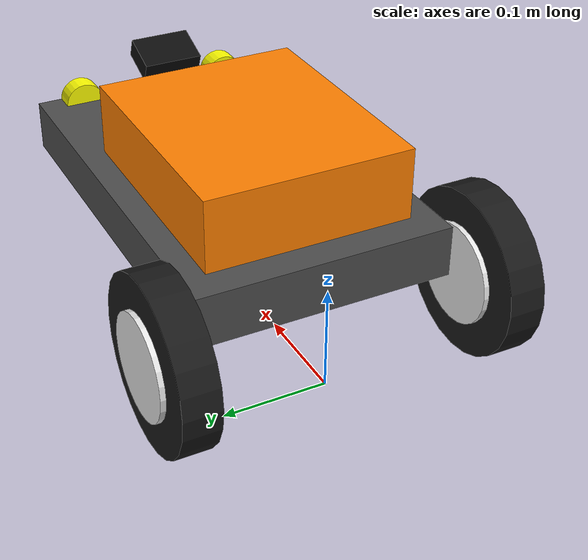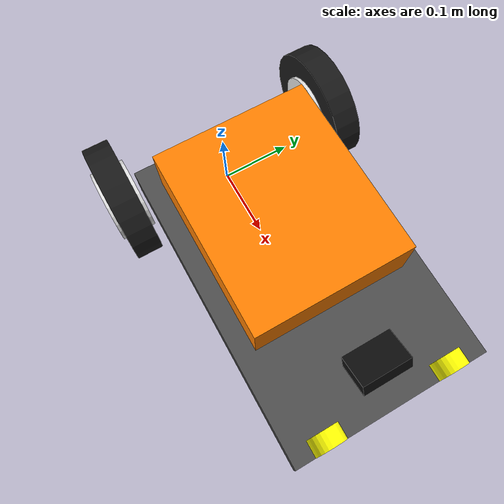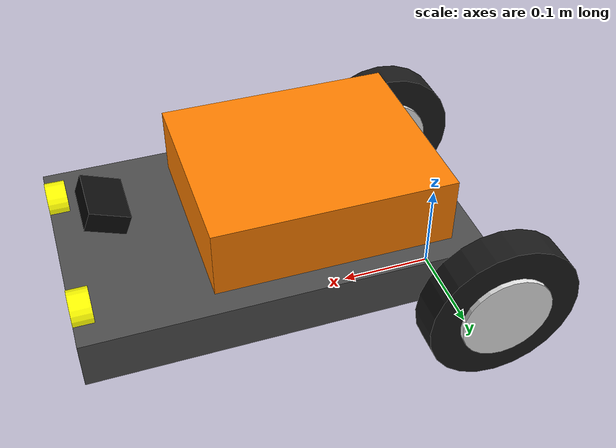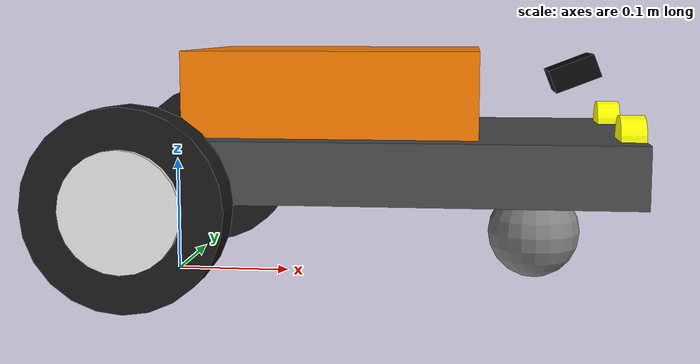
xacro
<?xml version="1.0"?>
<robot xmlns:xacro="http://www.ros.org/wiki/xacro" name="tricycle_bot">

  <!-- Constantes de Geometría  -->
  <!-- Chasis físico principal para colisiones -->
  <xacro:property name="chassis_length" value="0.4"/>
  <xacro:property name="chassis_width" value="0.25"/>
  <xacro:property name="chassis_height" value="0.1"/>
  <xacro:property name="chassis_mass" value="2.0"/>

  <!-- Ruedas aumentadas y más realistas -->
  <xacro:property name="wheel_radius" value="0.08"/>
  <xacro:property name="wheel_thickness" value="0.035"/>
  <xacro:property name="wheel_mass" value="0.2"/>

  <xacro:property name="caster_radius" value="0.04"/>
  <xacro:property name="caster_mass" value="0.1"/>

  <!-- Macros de Inercia        -->
  <xacro:macro name="box_inertia" params="m w h d">
    <inertial>
      <mass value="${m}"/>
      <inertia ixx="${(m/12) * (h*h + d*d)}" ixy="0.0" ixz="0.0" iyy="${(m/12) * (w*w + d*d)}" iyz="0.0" izz="${(m/12) * (w*w + h*h)}"/>
    </inertial>
  </xacro:macro>

  <xacro:macro name="cylinder_inertia" params="m r h">
    <inertial>
      <mass value="${m}"/>
      <inertia ixx="${(m/12) * (3*r*r + h*h)}" ixy="0" ixz="0" iyy="${(m/12) * (3*r*r + h*h)}" iyz="0" izz="${(m/2) * (r*r)}"/>
    </inertial>
  </xacro:macro>

  <xacro:macro name="sphere_inertia" params="m r">
    <inertial>
      <mass value="${m}"/>
      <inertia ixx="${(2/5) * m * (r*r)}" ixy="0.0" ixz="0.0" iyy="${(2/5) * m * (r*r)}" iyz="0.0" izz="${(2/5) * m * (r*r)}"/>
    </inertial>
  </xacro:macro>

  <!-- Base Footprint           -->
  <link name="base_footprint"/>

  <!-- Base Link (Chasis)       -->
  <joint name="base_joint" type="fixed">
    <parent link="base_footprint"/>
    <child link="base_link"/>
    <!-- Elevamos el origen para que el fondo de las ruedas toque exactamente en Z=0 -->
    <origin xyz="0 0 ${wheel_radius}" rpy="0 0 0"/>
  </joint>

  <link name="base_link">
    <!-- Visual 1: Plataforma base (Plateada) -->
    <visual>
      <origin xyz="${chassis_length/2} 0 ${chassis_height/4}" rpy="0 0 0"/>
      <geometry>
        <box size="${chassis_length} ${chassis_width} ${chassis_height/2}"/>
      </geometry>
      <material name="dark_grey">
        <color rgba="0.3 0.3 0.3 1"/>
      </material>
    </visual>

    <!-- Visual 2: Carrocería / Cabina superior (Naranja) -->
    <visual>
      <origin xyz="${chassis_length/2 - 0.05} 0 ${chassis_height * 0.8}" rpy="0 0 0"/>
      <geometry>
        <box size="${chassis_length * 0.6} ${chassis_width * 0.8} ${chassis_height * 0.8}"/>
      </geometry>
      <material name="orange">
        <color rgba="1.0 0.5 0.0 1"/>
      </material>
    </visual>

    <!-- Visual 3: Par de faros simulados al frente (Amarillos) -->
    <visual>
      <origin xyz="${chassis_length - 0.01} 0.08 ${chassis_height/2}" rpy="0 1.5708 0"/>
      <geometry>
        <cylinder radius="0.02" length="0.02"/>
      </geometry>
      <material name="yellow">
        <color rgba="1.0 1.0 0.0 1"/>
      </material>
    </visual>

    <visual>
      <origin xyz="${chassis_length - 0.01} -0.08 ${chassis_height/2}" rpy="0 1.5708 0"/>
      <geometry>
        <cylinder radius="0.02" length="0.02"/>
      </geometry>
      <material name="yellow">
        <color rgba="1.0 1.0 0.0 1"/>
      </material>
    </visual>

    <!-- La colisión sigue siendo un bloque único abstracto para proteger la física -->
    <collision>
      <origin xyz="${chassis_length/2} 0 ${chassis_height/2}" rpy="0 0 0"/>
      <geometry>
        <box size="${chassis_length} ${chassis_width} ${chassis_height}"/>
      </geometry>
    </collision>

    <xacro:box_inertia m="${chassis_mass}" w="${chassis_length}" d="${chassis_width}" h="${chassis_height}"/>
  </link>

  <!-- Rueda Izquierda          -->
  <joint name="left_wheel_joint" type="continuous">
    <parent link="base_link"/>
    <child link="left_wheel"/>
    <!-- Un poco más separadas del chasis hacia los bordes -->
    <origin xyz="0.0 ${chassis_width/2 + wheel_thickness/2 + 0.01} 0" rpy="-1.5708 0 0"/>
    <axis xyz="0 0 1"/>
  </joint>

  <link name="left_wheel">
    <visual>
      <geometry>
        <cylinder radius="${wheel_radius}" length="${wheel_thickness}"/>
      </geometry>
      <material name="black">
        <color rgba="0.1 0.1 0.1 1"/>
      </material>
    </visual>
    <!-- Visual decorativo: Rin o tapón central (Blanco) -->
    <visual>
      <origin xyz="0 0 0" rpy="0 0 0"/>
      <geometry>
        <cylinder radius="${wheel_radius * 0.6}" length="${wheel_thickness + 0.01}"/>
      </geometry>
      <material name="white">
        <color rgba="0.9 0.9 0.9 1"/>
      </material>
    </visual>

    <collision>
      <geometry>
        <cylinder radius="${wheel_radius}" length="${wheel_thickness}"/>
      </geometry>
    </collision>
    <xacro:cylinder_inertia m="${wheel_mass}" r="${wheel_radius}" h="${wheel_thickness}"/>
  </link>

  <gazebo reference="left_wheel">
    <mu1 value="1.0"/>
    <mu2 value="1.0"/>
  </gazebo>

  <!-- Rueda Derecha            -->
  <joint name="right_wheel_joint" type="continuous">
    <parent link="base_link"/>
    <child link="right_wheel"/>
    <origin xyz="0.0 ${-chassis_width/2 - wheel_thickness/2 - 0.01} 0" rpy="-1.5708 0 0"/>
    <axis xyz="0 0 1"/>
  </joint>

  <link name="right_wheel">
    <visual>
      <geometry>
        <cylinder radius="${wheel_radius}" length="${wheel_thickness}"/>
      </geometry>
      <material name="black">
        <color rgba="0.1 0.1 0.1 1"/>
      </material>
    </visual>
    <!-- Visual decorativo: Rin o tapón central (Blanco) -->
    <visual>
      <origin xyz="0 0 0" rpy="0 0 0"/>
      <geometry>
        <cylinder radius="${wheel_radius * 0.6}" length="${wheel_thickness + 0.01}"/>
      </geometry>
      <material name="white">
        <color rgba="0.9 0.9 0.9 1"/>
      </material>
    </visual>

    <collision>
      <geometry>
        <cylinder radius="${wheel_radius}" length="${wheel_thickness}"/>
      </geometry>
    </collision>
    <xacro:cylinder_inertia m="${wheel_mass}" r="${wheel_radius}" h="${wheel_thickness}"/>
  </link>

  <gazebo reference="right_wheel">
    <mu1 value="1.0"/>
    <mu2 value="1.0"/>
  </gazebo>

  <!-- Rueda Caster (Loca)      -->
  <joint name="caster_joint" type="fixed">
    <parent link="base_link"/>
    <child link="caster_wheel"/>
    <!-- Alineación matemática para que toque el suelo exactamente igual que las ruedas -->
    <origin xyz="${chassis_length - caster_radius*2} 0 ${-(wheel_radius - caster_radius)}" rpy="0 0 0"/>
  </joint>

  <link name="caster_wheel">
    <visual>
      <geometry>
        <sphere radius="${caster_radius}"/>
      </geometry>
      <material name="grey_caster">
        <color rgba="0.5 0.5 0.5 1"/>
      </material>
    </visual>
    <collision>
      <geometry>
        <sphere radius="${caster_radius}"/>
      </geometry>
    </collision>
    <xacro:sphere_inertia m="${caster_mass}" r="${caster_radius}"/>
  </link>

  <gazebo reference="caster_wheel">
    <!-- Cero fricción para que funcione como deslizador loco -->
    <mu1 value="0.0"/>
    <mu2 value="0.0"/>
  </gazebo>

  <!-- Cerebro Motor (Plugin)   -->
  <gazebo>
    <plugin filename="gz-sim-diff-drive-system" name="gz::sim::systems::DiffDrive">
      <!-- Nombres de las articulaciones de los motores -->
      <left_joint>left_wheel_joint</left_joint>
      <right_joint>right_wheel_joint</right_joint>

      <!-- Físicas para que el plugin calcule los giros -->
      <wheel_separation>0.305</wheel_separation>
      <wheel_radius>${wheel_radius}</wheel_radius>

      <!-- Topic por el que escuchará dentro de Gazebo -->
      <topic>/cmd_vel</topic>
    </plugin>
  </gazebo>

  <!-- Sensor Cámara            -->
  <joint name="camera_joint" type="fixed">
    <parent link="base_link"/>
    <child link="camera_link"/>
    <!-- Colocada en la punta delantera del chasis. RPY de 1.2 rads = Apuntando ~70 grados hacia abajo -->
    <origin xyz="${chassis_length - 0.05} 0 ${chassis_height}" rpy="0 1.2 0"/>
  </joint>

  <link name="camera_link">
    <!-- Una pequeña caja negra representativa -->
    <visual>
      <geometry><box size="0.02 0.06 0.04"/></geometry>
      <material name="black">
        <color rgba="0.05 0.05 0.05 1"/>
      </material>
    </visual>
  </link>

  <gazebo reference="camera_link">
    <!-- El plugin nativo del sensor de cámara de Gazebo Harmonic -->
    <sensor name="line_camera" type="camera">
      <camera>
        <horizontal_fov>1.1</horizontal_fov>
        <image>
          <!-- Resolución óptima para no ahogar el procesador leyendo colores base -->
          <width>320</width>
          <height>240</height>
        </image>
        <clip>
          <near>0.05</near>
          <far>4.0</far>
        </clip>
      </camera>
      <always_on>1</always_on>
      <update_rate>30</update_rate> <!-- 30 FPS está volando para un seguidor simple -->
      <!-- Visualiza el cono azul transparente en pantalla -->
      <visualize>true</visualize>
      <topic>camera/image_raw</topic>
    </sensor>
  </gazebo>

</robot>
